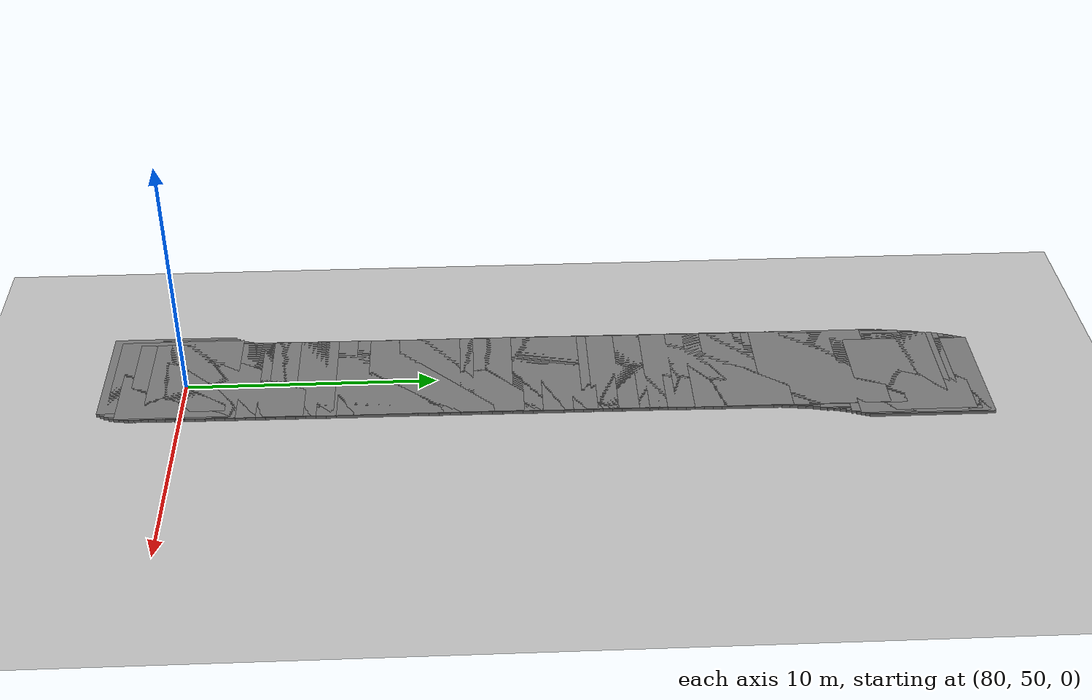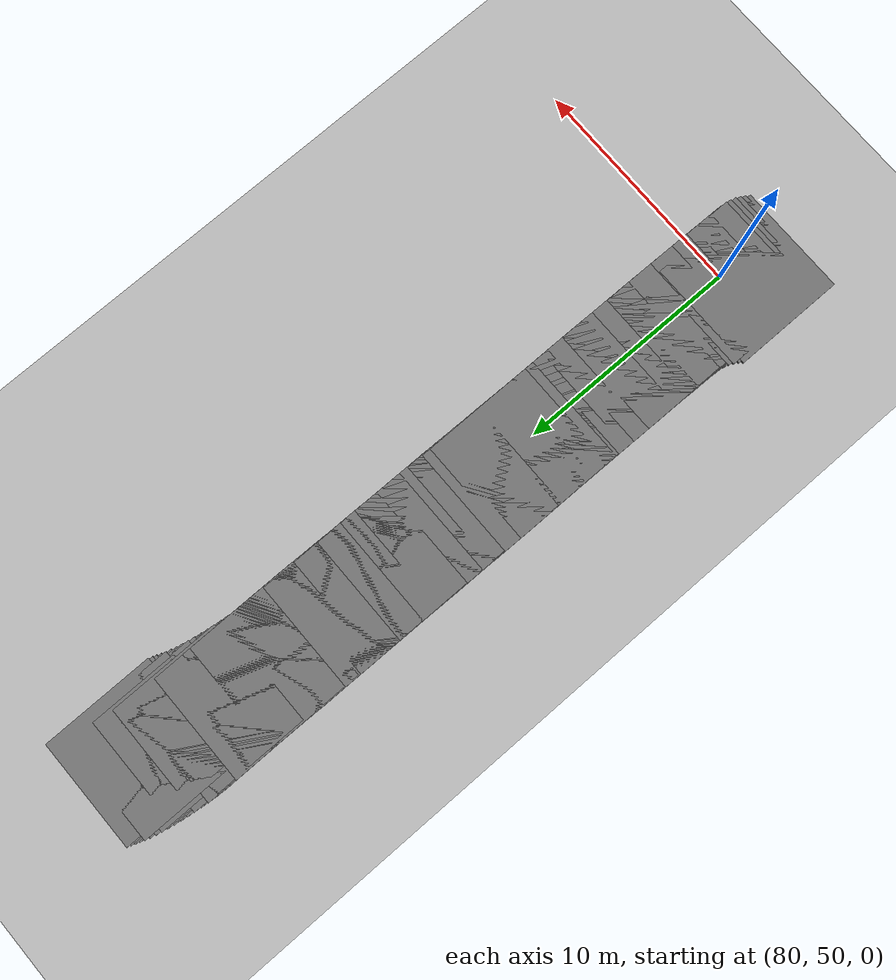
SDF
<sdf version="1.6">
 <world name="default">
  <include><uri>model://sun</uri></include>
  <include><uri>model://ground_plane</uri></include>
  <model name="road_segment_180">
   <static>true</static>
   <link name="link">
    <visual name="visual">
     <geometry><box><size>5.0 5.0 0.2</size></box></geometry>
     <material><ambient>0.5 0.5 0.5 1</ambient><diffuse>0.5 0.5 0.5 1</diffuse></material>
     <pose>80.60888745921979 79.49211408024895 0.0 0 0 0</pose>
    </visual>
    <collision name="collision">
     <geometry><box><size>5.0 5.0 0.2</size></box></geometry>
     <pose>80.60888745921979 79.49211408024895 0.0 0 0 0</pose>
    </collision>
   </link>
  </model>
  <model name="road_segment_181">
   <static>true</static>
   <link name="link">
    <visual name="visual">
     <geometry><box><size>5.0 5.0 0.2</size></box></geometry>
     <material><ambient>0.5 0.5 0.5 1</ambient><diffuse>0.5 0.5 0.5 1</diffuse></material>
     <pose>80.55144524606797 79.33194410394843 0.0 0 0 0</pose>
    </visual>
    <collision name="collision">
     <geometry><box><size>5.0 5.0 0.2</size></box></geometry>
     <pose>80.55144524606797 79.33194410394843 0.0 0 0 0</pose>
    </collision>
   </link>
  </model>
  <model name="road_segment_182">
   <static>true</static>
   <link name="link">
    <visual name="visual">
     <geometry><box><size>5.0 5.0 0.2</size></box></geometry>
     <material><ambient>0.5 0.5 0.5 1</ambient><diffuse>0.5 0.5 0.5 1</diffuse></material>
     <pose>80.49216488210705 79.1734085151585 0.0 0 0 0</pose>
    </visual>
    <collision name="collision">
     <geometry><box><size>5.0 5.0 0.2</size></box></geometry>
     <pose>80.49216488210705 79.1734085151585 0.0 0 0 0</pose>
    </collision>
   </link>
  </model>
  <model name="road_segment_183">
   <static>true</static>
   <link name="link">
    <visual name="visual">
     <geometry><box><size>5.0 5.0 0.2</size></box></geometry>
     <material><ambient>0.5 0.5 0.5 1</ambient><diffuse>0.5 0.5 0.5 1</diffuse></material>
     <pose>80.4285189099786 79.00588379504936 0.0 0 0 0</pose>
    </visual>
    <collision name="collision">
     <geometry><box><size>5.0 5.0 0.2</size></box></geometry>
     <pose>80.4285189099786 79.00588379504936 0.0 0 0 0</pose>
    </collision>
   </link>
  </model>
  <model name="road_segment_184">
   <static>true</static>
   <link name="link">
    <visual name="visual">
     <geometry><box><size>5.0 5.0 0.2</size></box></geometry>
     <material><ambient>0.5 0.5 0.5 1</ambient><diffuse>0.5 0.5 0.5 1</diffuse></material>
     <pose>80.36487293781751 78.82242379668098 0.0 0 0 0</pose>
    </visual>
    <collision name="collision">
     <geometry><box><size>5.0 5.0 0.2</size></box></geometry>
     <pose>80.36487293781751 78.82242379668098 0.0 0 0 0</pose>
    </collision>
   </link>
  </model>
  <model name="road_segment_185">
   <static>true</static>
   <link name="link">
    <visual name="visual">
     <geometry><box><size>5.0 5.0 0.2</size></box></geometry>
     <material><ambient>0.5 0.5 0.5 1</ambient><diffuse>0.5 0.5 0.5 1</diffuse></material>
     <pose>80.30076742794597 78.62016834191523 0.0 0 0 0</pose>
    </visual>
    <collision name="collision">
     <geometry><box><size>5.0 5.0 0.2</size></box></geometry>
     <pose>80.30076742794597 78.62016834191523 0.0 0 0 0</pose>
    </collision>
   </link>
  </model>
  <model name="road_segment_186">
   <static>true</static>
   <link name="link">
    <visual name="visual">
     <geometry><box><size>5.0 5.0 0.2</size></box></geometry>
     <material><ambient>0.5 0.5 0.5 1</ambient><diffuse>0.5 0.5 0.5 1</diffuse></material>
     <pose>80.23918937549817 78.39217128381212 0.0 0 0 0</pose>
    </visual>
    <collision name="collision">
     <geometry><box><size>5.0 5.0 0.2</size></box></geometry>
     <pose>80.23918937549817 78.39217128381212 0.0 0 0 0</pose>
    </collision>
   </link>
  </model>
  <model name="road_segment_187">
   <static>true</static>
   <link name="link">
    <visual name="visual">
     <geometry><box><size>5.0 5.0 0.2</size></box></geometry>
     <material><ambient>0.5 0.5 0.5 1</ambient><diffuse>0.5 0.5 0.5 1</diffuse></material>
     <pose>80.18611277054654 78.1506905287193 0.0 0 0 0</pose>
    </visual>
    <collision name="collision">
     <geometry><box><size>5.0 5.0 0.2</size></box></geometry>
     <pose>80.18611277054654 78.1506905287193 0.0 0 0 0</pose>
    </collision>
   </link>
  </model>
  <model name="road_segment_188">
   <static>true</static>
   <link name="link">
    <visual name="visual">
     <geometry><box><size>5.0 5.0 0.2</size></box></geometry>
     <material><ambient>0.5 0.5 0.5 1</ambient><diffuse>0.5 0.5 0.5 1</diffuse></material>
     <pose>80.13441477872625 77.89940344855557 0.0 0 0 0</pose>
    </visual>
    <collision name="collision">
     <geometry><box><size>5.0 5.0 0.2</size></box></geometry>
     <pose>80.13441477872625 77.89940344855557 0.0 0 0 0</pose>
    </collision>
   </link>
  </model>
  <model name="road_segment_189">
   <static>true</static>
   <link name="link">
    <visual name="visual">
     <geometry><box><size>5.0 5.0 0.2</size></box></geometry>
     <material><ambient>0.5 0.5 0.5 1</ambient><diffuse>0.5 0.5 0.5 1</diffuse></material>
     <pose>80.08202748035662 77.63095529949786 0.0 0 0 0</pose>
    </visual>
    <collision name="collision">
     <geometry><box><size>5.0 5.0 0.2</size></box></geometry>
     <pose>80.08202748035662 77.63095529949786 0.0 0 0 0</pose>
    </collision>
   </link>
  </model>
  <model name="road_segment_190">
   <static>true</static>
   <link name="link">
    <visual name="visual">
     <geometry><box><size>5.0 5.0 0.2</size></box></geometry>
     <material><ambient>0.5 0.5 0.5 1</ambient><diffuse>0.5 0.5 0.5 1</diffuse></material>
     <pose>80.03193787050652 77.35474380975569 0.0 0 0 0</pose>
    </visual>
    <collision name="collision">
     <geometry><box><size>5.0 5.0 0.2</size></box></geometry>
     <pose>80.03193787050652 77.35474380975569 0.0 0 0 0</pose>
    </collision>
   </link>
  </model>
  <model name="road_segment_191">
   <static>true</static>
   <link name="link">
    <visual name="visual">
     <geometry><box><size>5.0 5.0 0.2</size></box></geometry>
     <material><ambient>0.5 0.5 0.5 1</ambient><diffuse>0.5 0.5 0.5 1</diffuse></material>
     <pose>79.99011993934639 77.06750020429335 0.0 0 0 0</pose>
    </visual>
    <collision name="collision">
     <geometry><box><size>5.0 5.0 0.2</size></box></geometry>
     <pose>79.99011993934639 77.06750020429335 0.0 0 0 0</pose>
    </collision>
   </link>
  </model>
  <model name="road_segment_192">
   <static>true</static>
   <link name="link">
    <visual name="visual">
     <geometry><box><size>5.0 5.0 0.2</size></box></geometry>
     <material><ambient>0.5 0.5 0.5 1</ambient><diffuse>0.5 0.5 0.5 1</diffuse></material>
     <pose>79.95335692293575 76.76636430497274 0.0 0 0 0</pose>
    </visual>
    <collision name="collision">
     <geometry><box><size>5.0 5.0 0.2</size></box></geometry>
     <pose>79.95335692293575 76.76636430497274 0.0 0 0 0</pose>
    </collision>
   </link>
  </model>
  <model name="road_segment_193">
   <static>true</static>
   <link name="link">
    <visual name="visual">
     <geometry><box><size>5.0 5.0 0.2</size></box></geometry>
     <material><ambient>0.5 0.5 0.5 1</ambient><diffuse>0.5 0.5 0.5 1</diffuse></material>
     <pose>79.91544506226535 76.45664787120874 0.0 0 0 0</pose>
    </visual>
    <collision name="collision">
     <geometry><box><size>5.0 5.0 0.2</size></box></geometry>
     <pose>79.91544506226535 76.45664787120874 0.0 0 0 0</pose>
    </collision>
   </link>
  </model>
  <model name="road_segment_194">
   <static>true</static>
   <link name="link">
    <visual name="visual">
     <geometry><box><size>5.0 5.0 0.2</size></box></geometry>
     <material><ambient>0.5 0.5 0.5 1</ambient><diffuse>0.5 0.5 0.5 1</diffuse></material>
     <pose>79.87937135240406 76.14284546865736 0.0 0 0 0</pose>
    </visual>
    <collision name="collision">
     <geometry><box><size>5.0 5.0 0.2</size></box></geometry>
     <pose>79.87937135240406 76.14284546865736 0.0 0 0 0</pose>
    </collision>
   </link>
  </model>
  <model name="road_segment_195">
   <static>true</static>
   <link name="link">
    <visual name="visual">
     <geometry><box><size>5.0 5.0 0.2</size></box></geometry>
     <material><ambient>0.5 0.5 0.5 1</ambient><diffuse>0.5 0.5 0.5 1</diffuse></material>
     <pose>79.8538670097849 75.82332270981522 0.0 0 0 0</pose>
    </visual>
    <collision name="collision">
     <geometry><box><size>5.0 5.0 0.2</size></box></geometry>
     <pose>79.8538670097849 75.82332270981522 0.0 0 0 0</pose>
    </collision>
   </link>
  </model>
  <model name="road_segment_196">
   <static>true</static>
   <link name="link">
    <visual name="visual">
     <geometry><box><size>5.0 5.0 0.2</size></box></geometry>
     <material><ambient>0.5 0.5 0.5 1</ambient><diffuse>0.5 0.5 0.5 1</diffuse></material>
     <pose>79.84054041634543 75.49562801339829 0.0 0 0 0</pose>
    </visual>
    <collision name="collision">
     <geometry><box><size>5.0 5.0 0.2</size></box></geometry>
     <pose>79.84054041634543 75.49562801339829 0.0 0 0 0</pose>
    </collision>
   </link>
  </model>
  <model name="road_segment_197">
   <static>true</static>
   <link name="link">
    <visual name="visual">
     <geometry><box><size>5.0 5.0 0.2</size></box></geometry>
     <material><ambient>0.5 0.5 0.5 1</ambient><diffuse>0.5 0.5 0.5 1</diffuse></material>
     <pose>79.83801295895435 75.16180436381477 0.0 0 0 0</pose>
    </visual>
    <collision name="collision">
     <geometry><box><size>5.0 5.0 0.2</size></box></geometry>
     <pose>79.83801295895435 75.16180436381477 0.0 0 0 0</pose>
    </collision>
   </link>
  </model>
  <model name="road_segment_198">
   <static>true</static>
   <link name="link">
    <visual name="visual">
     <geometry><box><size>5.0 5.0 0.2</size></box></geometry>
     <material><ambient>0.5 0.5 0.5 1</ambient><diffuse>0.5 0.5 0.5 1</diffuse></material>
     <pose>79.84054041634543 74.82103456729122 0.0 0 0 0</pose>
    </visual>
    <collision name="collision">
     <geometry><box><size>5.0 5.0 0.2</size></box></geometry>
     <pose>79.84054041634543 74.82103456729122 0.0 0 0 0</pose>
    </collision>
   </link>
  </model>
  <model name="road_segment_199">
   <static>true</static>
   <link name="link">
    <visual name="visual">
     <geometry><box><size>5.0 5.0 0.2</size></box></geometry>
     <material><ambient>0.5 0.5 0.5 1</ambient><diffuse>0.5 0.5 0.5 1</diffuse></material>
     <pose>79.84031064747388 74.4741358176011 0.0 0 0 0</pose>
    </visual>
    <collision name="collision">
     <geometry><box><size>5.0 5.0 0.2</size></box></geometry>
     <pose>79.84031064747388 74.4741358176011 0.0 0 0 0</pose>
    </collision>
   </link>
  </model>
  <model name="road_segment_200">
   <static>true</static>
   <link name="link">
    <visual name="visual">
     <geometry><box><size>5.0 5.0 0.2</size></box></geometry>
     <material><ambient>0.5 0.5 0.5 1</ambient><diffuse>0.5 0.5 0.5 1</diffuse></material>
     <pose>79.84559533109497 74.12478548663418 0.0 0 0 0</pose>
    </visual>
    <collision name="collision">
     <geometry><box><size>5.0 5.0 0.2</size></box></geometry>
     <pose>79.84559533109497 74.12478548663418 0.0 0 0 0</pose>
    </collision>
   </link>
  </model>
  <model name="road_segment_201">
   <static>true</static>
   <link name="link">
    <visual name="visual">
     <geometry><box><size>5.0 5.0 0.2</size></box></geometry>
     <material><ambient>0.5 0.5 0.5 1</ambient><diffuse>0.5 0.5 0.5 1</diffuse></material>
     <pose>79.85179909010427 73.77094059001128 0.0 0 0 0</pose>
    </visual>
    <collision name="collision">
     <geometry><box><size>5.0 5.0 0.2</size></box></geometry>
     <pose>79.85179909010427 73.77094059001128 0.0 0 0 0</pose>
    </collision>
   </link>
  </model>
  <model name="road_segment_202">
   <static>true</static>
   <link name="link">
    <visual name="visual">
     <geometry><box><size>5.0 5.0 0.2</size></box></geometry>
     <material><ambient>0.5 0.5 0.5 1</ambient><diffuse>0.5 0.5 0.5 1</diffuse></material>
     <pose>79.85110978355492 73.41546130587778 0.0 0 0 0</pose>
    </visual>
    <collision name="collision">
     <geometry><box><size>5.0 5.0 0.2</size></box></geometry>
     <pose>79.85110978355492 73.41546130587778 0.0 0 0 0</pose>
    </collision>
   </link>
  </model>
  <model name="road_segment_203">
   <static>true</static>
   <link name="link">
    <visual name="visual">
     <geometry><box><size>5.0 5.0 0.2</size></box></geometry>
     <material><ambient>0.5 0.5 0.5 1</ambient><diffuse>0.5 0.5 0.5 1</diffuse></material>
     <pose>79.84720371306517 73.05834763421916 0.0 0 0 0</pose>
    </visual>
    <collision name="collision">
     <geometry><box><size>5.0 5.0 0.2</size></box></geometry>
     <pose>79.84720371306517 73.05834763421916 0.0 0 0 0</pose>
    </collision>
   </link>
  </model>
  <model name="road_segment_204">
   <static>true</static>
   <link name="link">
    <visual name="visual">
     <geometry><box><size>5.0 5.0 0.2</size></box></geometry>
     <material><ambient>0.5 0.5 0.5 1</ambient><diffuse>0.5 0.5 0.5 1</diffuse></material>
     <pose>79.84168926060521 72.70409414072043 0.0 0 0 0</pose>
    </visual>
    <collision name="collision">
     <geometry><box><size>5.0 5.0 0.2</size></box></geometry>
     <pose>79.84168926060521 72.70409414072043 0.0 0 0 0</pose>
    </collision>
   </link>
  </model>
  <model name="road_segment_205">
   <static>true</static>
   <link name="link">
    <visual name="visual">
     <geometry><box><size>5.0 5.0 0.2</size></box></geometry>
     <material><ambient>0.5 0.5 0.5 1</ambient><diffuse>0.5 0.5 0.5 1</diffuse></material>
     <pose>79.83479619501394 72.34698046906907 0.0 0 0 0</pose>
    </visual>
    <collision name="collision">
     <geometry><box><size>5.0 5.0 0.2</size></box></geometry>
     <pose>79.83479619501394 72.34698046906907 0.0 0 0 0</pose>
    </collision>
   </link>
  </model>
  <model name="road_segment_206">
   <static>true</static>
   <link name="link">
    <visual name="visual">
     <geometry><box><size>5.0 5.0 0.2</size></box></geometry>
     <material><ambient>0.5 0.5 0.5 1</ambient><diffuse>0.5 0.5 0.5 1</diffuse></material>
     <pose>79.83157943107351 71.9841464411197 0.0 0 0 0</pose>
    </visual>
    <collision name="collision">
     <geometry><box><size>5.0 5.0 0.2</size></box></geometry>
     <pose>79.83157943107351 71.9841464411197 0.0 0 0 0</pose>
    </collision>
   </link>
  </model>
  <model name="road_segment_207">
   <static>true</static>
   <link name="link">
    <visual name="visual">
     <geometry><box><size>5.0 5.0 0.2</size></box></geometry>
     <material><ambient>0.5 0.5 0.5 1</ambient><diffuse>0.5 0.5 0.5 1</diffuse></material>
     <pose>79.8281328982942 71.62049521941866 0.0 0 0 0</pose>
    </visual>
    <collision name="collision">
     <geometry><box><size>5.0 5.0 0.2</size></box></geometry>
     <pose>79.8281328982942 71.62049521941866 0.0 0 0 0</pose>
    </collision>
   </link>
  </model>
  <model name="road_segment_208">
   <static>true</static>
   <link name="link">
    <visual name="visual">
     <geometry><box><size>5.0 5.0 0.2</size></box></geometry>
     <material><ambient>0.5 0.5 0.5 1</ambient><diffuse>0.5 0.5 0.5 1</diffuse></material>
     <pose>79.8203207573147 71.26052136961466 0.0 0 0 0</pose>
    </visual>
    <collision name="collision">
     <geometry><box><size>5.0 5.0 0.2</size></box></geometry>
     <pose>79.8203207573147 71.26052136961466 0.0 0 0 0</pose>
    </collision>
   </link>
  </model>
  <model name="road_segment_209">
   <static>true</static>
   <link name="link">
    <visual name="visual">
     <geometry><box><size>5.0 5.0 0.2</size></box></geometry>
     <material><ambient>0.5 0.5 0.5 1</ambient><diffuse>0.5 0.5 0.5 1</diffuse></material>
     <pose>79.81319792288453 70.90626787610867 0.0 0 0 0</pose>
    </visual>
    <collision name="collision">
     <geometry><box><size>5.0 5.0 0.2</size></box></geometry>
     <pose>79.81319792288453 70.90626787610867 0.0 0 0 0</pose>
    </collision>
   </link>
  </model>
  <model name="road_segment_210">
   <static>true</static>
   <link name="link">
    <visual name="visual">
     <geometry><box><size>5.0 5.0 0.2</size></box></geometry>
     <material><ambient>0.5 0.5 0.5 1</ambient><diffuse>0.5 0.5 0.5 1</diffuse></material>
     <pose>79.80630485729324 70.54833701070564 0.0 0 0 0</pose>
    </visual>
    <collision name="collision">
     <geometry><box><size>5.0 5.0 0.2</size></box></geometry>
     <pose>79.80630485729324 70.54833701070564 0.0 0 0 0</pose>
    </collision>
   </link>
  </model>
  <model name="road_segment_211">
   <static>true</static>
   <link name="link">
    <visual name="visual">
     <geometry><box><size>5.0 5.0 0.2</size></box></geometry>
     <material><ambient>0.5 0.5 0.5 1</ambient><diffuse>0.5 0.5 0.5 1</diffuse></material>
     <pose>79.80607508845435 70.1842771921215 0.0 0 0 0</pose>
    </visual>
    <collision name="collision">
     <geometry><box><size>5.0 5.0 0.2</size></box></geometry>
     <pose>79.80607508845435 70.1842771921215 0.0 0 0 0</pose>
    </collision>
   </link>
  </model>
  <model name="road_segment_212">
   <static>true</static>
   <link name="link">
    <visual name="visual">
     <geometry><box><size>5.0 5.0 0.2</size></box></geometry>
     <material><ambient>0.5 0.5 0.5 1</ambient><diffuse>0.5 0.5 0.5 1</diffuse></material>
     <pose>79.81044069665455 69.81449701723938 0.0 0 0 0</pose>
    </visual>
    <collision name="collision">
     <geometry><box><size>5.0 5.0 0.2</size></box></geometry>
     <pose>79.81044069665455 69.81449701723938 0.0 0 0 0</pose>
    </collision>
   </link>
  </model>
  <model name="road_segment_213">
   <static>true</static>
   <link name="link">
    <visual name="visual">
     <geometry><box><size>5.0 5.0 0.2</size></box></geometry>
     <material><ambient>0.5 0.5 0.5 1</ambient><diffuse>0.5 0.5 0.5 1</diffuse></material>
     <pose>79.80607508845435 69.44185666421187 0.0 0 0 0</pose>
    </visual>
    <collision name="collision">
     <geometry><box><size>5.0 5.0 0.2</size></box></geometry>
     <pose>79.80607508845435 69.44185666421187 0.0 0 0 0</pose>
    </collision>
   </link>
  </model>
  <model name="road_segment_214">
   <static>true</static>
   <link name="link">
    <visual name="visual">
     <geometry><box><size>5.0 5.0 0.2</size></box></geometry>
     <material><ambient>0.5 0.5 0.5 1</ambient><diffuse>0.5 0.5 0.5 1</diffuse></material>
     <pose>79.8007904048333 69.06758192367374 0.0 0 0 0</pose>
    </visual>
    <collision name="collision">
     <geometry><box><size>5.0 5.0 0.2</size></box></geometry>
     <pose>79.8007904048333 69.06758192367374 0.0 0 0 0</pose>
    </collision>
   </link>
  </model>
  <model name="road_segment_215">
   <static>true</static>
   <link name="link">
    <visual name="visual">
     <geometry><box><size>5.0 5.0 0.2</size></box></geometry>
     <material><ambient>0.5 0.5 0.5 1</ambient><diffuse>0.5 0.5 0.5 1</diffuse></material>
     <pose>79.79918202286308 68.68758682683763 0.0 0 0 0</pose>
    </visual>
    <collision name="collision">
     <geometry><box><size>5.0 5.0 0.2</size></box></geometry>
     <pose>79.79918202286308 68.68758682683763 0.0 0 0 0</pose>
    </collision>
   </link>
  </model>
  <model name="road_segment_216">
   <static>true</static>
   <link name="link">
    <visual name="visual">
     <geometry><box><size>5.0 5.0 0.2</size></box></geometry>
     <material><ambient>0.5 0.5 0.5 1</ambient><diffuse>0.5 0.5 0.5 1</diffuse></material>
     <pose>79.7959652589553 68.30105417994457 0.0 0 0 0</pose>
    </visual>
    <collision name="collision">
     <geometry><box><size>5.0 5.0 0.2</size></box></geometry>
     <pose>79.7959652589553 68.30105417994457 0.0 0 0 0</pose>
    </collision>
   </link>
  </model>
  <model name="road_segment_217">
   <static>true</static>
   <link name="link">
    <visual name="visual">
     <geometry><box><size>5.0 5.0 0.2</size></box></geometry>
     <material><ambient>0.5 0.5 0.5 1</ambient><diffuse>0.5 0.5 0.5 1</diffuse></material>
     <pose>79.7959652589553 67.912069951782 0.0 0 0 0</pose>
    </visual>
    <collision name="collision">
     <geometry><box><size>5.0 5.0 0.2</size></box></geometry>
     <pose>79.7959652589553 67.912069951782 0.0 0 0 0</pose>
    </collision>
   </link>
  </model>
  <model name="road_segment_218">
   <static>true</static>
   <link name="link">
    <visual name="visual">
     <geometry><box><size>5.0 5.0 0.2</size></box></geometry>
     <material><ambient>0.5 0.5 0.5 1</ambient><diffuse>0.5 0.5 0.5 1</diffuse></material>
     <pose>79.79435687698509 67.51940835172236 0.0 0 0 0</pose>
    </visual>
    <collision name="collision">
     <geometry><box><size>5.0 5.0 0.2</size></box></geometry>
     <pose>79.79435687698509 67.51940835172236 0.0 0 0 0</pose>
    </collision>
   </link>
  </model>
  <model name="road_segment_219">
   <static>true</static>
   <link name="link">
    <visual name="visual">
     <geometry><box><size>5.0 5.0 0.2</size></box></geometry>
     <material><ambient>0.5 0.5 0.5 1</ambient><diffuse>0.5 0.5 0.5 1</diffuse></material>
     <pose>79.7902210376238 67.12102639535746 0.0 0 0 0</pose>
    </visual>
    <collision name="collision">
     <geometry><box><size>5.0 5.0 0.2</size></box></geometry>
     <pose>79.7902210376238 67.12102639535746 0.0 0 0 0</pose>
    </collision>
   </link>
  </model>
  <model name="road_segment_220">
   <static>true</static>
   <link name="link">
    <visual name="visual">
     <geometry><box><size>5.0 5.0 0.2</size></box></geometry>
     <material><ambient>0.5 0.5 0.5 1</ambient><diffuse>0.5 0.5 0.5 1</diffuse></material>
     <pose>79.78953173107448 66.71937566397136 0.0 0 0 0</pose>
    </visual>
    <collision name="collision">
     <geometry><box><size>5.0 5.0 0.2</size></box></geometry>
     <pose>79.78953173107448 66.71937566397136 0.0 0 0 0</pose>
    </collision>
   </link>
  </model>
  <model name="road_segment_221">
   <static>true</static>
   <link name="link">
    <visual name="visual">
     <geometry><box><size>5.0 5.0 0.2</size></box></geometry>
     <material><ambient>0.5 0.5 0.5 1</ambient><diffuse>0.5 0.5 0.5 1</diffuse></material>
     <pose>79.79159965075512 66.31486475443263 0.0 0 0 0</pose>
    </visual>
    <collision name="collision">
     <geometry><box><size>5.0 5.0 0.2</size></box></geometry>
     <pose>79.79159965075512 66.31486475443263 0.0 0 0 0</pose>
    </collision>
   </link>
  </model>
  <model name="road_segment_222">
   <static>true</static>
   <link name="link">
    <visual name="visual">
     <geometry><box><size>5.0 5.0 0.2</size></box></geometry>
     <material><ambient>0.5 0.5 0.5 1</ambient><diffuse>0.5 0.5 0.5 1</diffuse></material>
     <pose>79.78746381139382 65.9160742011919 0.0 0 0 0</pose>
    </visual>
    <collision name="collision">
     <geometry><box><size>5.0 5.0 0.2</size></box></geometry>
     <pose>79.78746381139382 65.9160742011919 0.0 0 0 0</pose>
    </collision>
   </link>
  </model>
  <model name="road_segment_223">
   <static>true</static>
   <link name="link">
    <visual name="visual">
     <geometry><box><size>5.0 5.0 0.2</size></box></geometry>
     <material><ambient>0.5 0.5 0.5 1</ambient><diffuse>0.5 0.5 0.5 1</diffuse></material>
     <pose>79.78309820319363 65.5160578573164 0.0 0 0 0</pose>
    </visual>
    <collision name="collision">
     <geometry><box><size>5.0 5.0 0.2</size></box></geometry>
     <pose>79.78309820319363 65.5160578573164 0.0 0 0 0</pose>
    </collision>
   </link>
  </model>
  <model name="road_segment_224">
   <static>true</static>
   <link name="link">
    <visual name="visual">
     <geometry><box><size>5.0 5.0 0.2</size></box></geometry>
     <material><ambient>0.5 0.5 0.5 1</ambient><diffuse>0.5 0.5 0.5 1</diffuse></material>
     <pose>79.77758375073367 65.11318133529554 0.0 0 0 0</pose>
    </visual>
    <collision name="collision">
     <geometry><box><size>5.0 5.0 0.2</size></box></geometry>
     <pose>79.77758375073367 65.11318133529554 0.0 0 0 0</pose>
    </collision>
   </link>
  </model>
  <model name="road_segment_225">
   <static>true</static>
   <link name="link">
    <visual name="visual">
     <geometry><box><size>5.0 5.0 0.2</size></box></geometry>
     <material><ambient>0.5 0.5 0.5 1</ambient><diffuse>0.5 0.5 0.5 1</diffuse></material>
     <pose>79.77344791140503 64.7033586663419 0.0 0 0 0</pose>
    </visual>
    <collision name="collision">
     <geometry><box><size>5.0 5.0 0.2</size></box></geometry>
     <pose>79.77344791140503 64.7033586663419 0.0 0 0 0</pose>
    </collision>
   </link>
  </model>
  <model name="road_segment_226">
   <static>true</static>
   <link name="link">
    <visual name="visual">
     <geometry><box><size>5.0 5.0 0.2</size></box></geometry>
     <material><ambient>0.5 0.5 0.5 1</ambient><diffuse>0.5 0.5 0.5 1</diffuse></material>
     <pose>79.7683929966555 64.29190160987038 0.0 0 0 0</pose>
    </visual>
    <collision name="collision">
     <geometry><box><size>5.0 5.0 0.2</size></box></geometry>
     <pose>79.7683929966555 64.29190160987038 0.0 0 0 0</pose>
    </collision>
   </link>
  </model>
  <model name="road_segment_227">
   <static>true</static>
   <link name="link">
    <visual name="visual">
     <geometry><box><size>5.0 5.0 0.2</size></box></geometry>
     <material><ambient>0.5 0.5 0.5 1</ambient><diffuse>0.5 0.5 0.5 1</diffuse></material>
     <pose>79.76448692613309 63.882487537792585 0.0 0 0 0</pose>
    </visual>
    <collision name="collision">
     <geometry><box><size>5.0 5.0 0.2</size></box></geometry>
     <pose>79.76448692613309 63.882487537792585 0.0 0 0 0</pose>
    </collision>
   </link>
  </model>
  <model name="road_segment_228">
   <static>true</static>
   <link name="link">
    <visual name="visual">
     <geometry><box><size>5.0 5.0 0.2</size></box></geometry>
     <material><ambient>0.5 0.5 0.5 1</ambient><diffuse>0.5 0.5 0.5 1</diffuse></material>
     <pose>79.76517623271508 63.467761706299875 0.0 0 0 0</pose>
    </visual>
    <collision name="collision">
     <geometry><box><size>5.0 5.0 0.2</size></box></geometry>
     <pose>79.76517623271508 63.467761706299875 0.0 0 0 0</pose>
    </collision>
   </link>
  </model>
  <model name="road_segment_229">
   <static>true</static>
   <link name="link">
    <visual name="visual">
     <geometry><box><size>5.0 5.0 0.2</size></box></geometry>
     <material><ambient>0.5 0.5 0.5 1</ambient><diffuse>0.5 0.5 0.5 1</diffuse></material>
     <pose>79.7624190064851 63.049767099778684 0.0 0 0 0</pose>
    </visual>
    <collision name="collision">
     <geometry><box><size>5.0 5.0 0.2</size></box></geometry>
     <pose>79.7624190064851 63.049767099778684 0.0 0 0 0</pose>
    </collision>
   </link>
  </model>
  <model name="road_segment_230">
   <static>true</static>
   <link name="link">
    <visual name="visual">
     <geometry><box><size>5.0 5.0 0.2</size></box></geometry>
     <material><ambient>0.5 0.5 0.5 1</ambient><diffuse>0.5 0.5 0.5 1</diffuse></material>
     <pose>79.75897247367314 62.63422407452705 0.0 0 0 0</pose>
    </visual>
    <collision name="collision">
     <geometry><box><size>5.0 5.0 0.2</size></box></geometry>
     <pose>79.75897247367314 62.63422407452705 0.0 0 0 0</pose>
    </collision>
   </link>
  </model>
  <model name="road_segment_231">
   <static>true</static>
   <link name="link">
    <visual name="visual">
     <geometry><box><size>5.0 5.0 0.2</size></box></geometry>
     <material><ambient>0.5 0.5 0.5 1</ambient><diffuse>0.5 0.5 0.5 1</diffuse></material>
     <pose>79.75391755892362 62.21255209610156 0.0 0 0 0</pose>
    </visual>
    <collision name="collision">
     <geometry><box><size>5.0 5.0 0.2</size></box></geometry>
     <pose>79.75391755892362 62.21255209610156 0.0 0 0 0</pose>
    </collision>
   </link>
  </model>
  <model name="road_segment_232">
   <static>true</static>
   <link name="link">
    <visual name="visual">
     <geometry><box><size>5.0 5.0 0.2</size></box></geometry>
     <material><ambient>0.5 0.5 0.5 1</ambient><diffuse>0.5 0.5 0.5 1</diffuse></material>
     <pose>79.74702449336499 61.797826264608844 0.0 0 0 0</pose>
    </visual>
    <collision name="collision">
     <geometry><box><size>5.0 5.0 0.2</size></box></geometry>
     <pose>79.74702449336499 61.797826264608844 0.0 0 0 0</pose>
    </collision>
   </link>
  </model>
  <model name="road_segment_233">
   <static>true</static>
   <link name="link">
    <visual name="visual">
     <geometry><box><size>5.0 5.0 0.2</size></box></geometry>
     <material><ambient>0.5 0.5 0.5 1</ambient><diffuse>0.5 0.5 0.5 1</diffuse></material>
     <pose>79.74242911629325 61.38555201437842 0.0 0 0 0</pose>
    </visual>
    <collision name="collision">
     <geometry><box><size>5.0 5.0 0.2</size></box></geometry>
     <pose>79.74242911629325 61.38555201437842 0.0 0 0 0</pose>
    </collision>
   </link>
  </model>
  <model name="road_segment_234">
   <static>true</static>
   <link name="link">
    <visual name="visual">
     <geometry><box><size>5.0 5.0 0.2</size></box></geometry>
     <material><ambient>0.5 0.5 0.5 1</ambient><diffuse>0.5 0.5 0.5 1</diffuse></material>
     <pose>79.73967189006326 60.97940671732908 0.0 0 0 0</pose>
    </visual>
    <collision name="collision">
     <geometry><box><size>5.0 5.0 0.2</size></box></geometry>
     <pose>79.73967189006326 60.97940671732908 0.0 0 0 0</pose>
    </collision>
   </link>
  </model>
  <model name="road_segment_235">
   <static>true</static>
   <link name="link">
    <visual name="visual">
     <geometry><box><size>5.0 5.0 0.2</size></box></geometry>
     <material><ambient>0.5 0.5 0.5 1</ambient><diffuse>0.5 0.5 0.5 1</diffuse></material>
     <pose>79.73760397041528 60.577347389067135 0.0 0 0 0</pose>
    </visual>
    <collision name="collision">
     <geometry><box><size>5.0 5.0 0.2</size></box></geometry>
     <pose>79.73760397041528 60.577347389067135 0.0 0 0 0</pose>
    </collision>
   </link>
  </model>
  <model name="road_segment_236">
   <static>true</static>
   <link name="link">
    <visual name="visual">
     <geometry><box><size>5.0 5.0 0.2</size></box></geometry>
     <material><ambient>0.5 0.5 0.5 1</ambient><diffuse>0.5 0.5 0.5 1</diffuse></material>
     <pose>79.73576581957353 60.18345999836547 0.0 0 0 0</pose>
    </visual>
    <collision name="collision">
     <geometry><box><size>5.0 5.0 0.2</size></box></geometry>
     <pose>79.73576581957353 60.18345999836547 0.0 0 0 0</pose>
    </collision>
   </link>
  </model>
  <model name="road_segment_237">
   <static>true</static>
   <link name="link">
    <visual name="visual">
     <geometry><box><size>5.0 5.0 0.2</size></box></geometry>
     <material><ambient>0.5 0.5 0.5 1</ambient><diffuse>0.5 0.5 0.5 1</diffuse></material>
     <pose>79.73737420154373 59.788755413904894 0.0 0 0 0</pose>
    </visual>
    <collision name="collision">
     <geometry><box><size>5.0 5.0 0.2</size></box></geometry>
     <pose>79.73737420154373 59.788755413904894 0.0 0 0 0</pose>
    </collision>
   </link>
  </model>
  <model name="road_segment_238">
   <static>true</static>
   <link name="link">
    <visual name="visual">
     <geometry><box><size>5.0 5.0 0.2</size></box></geometry>
     <material><ambient>0.5 0.5 0.5 1</ambient><diffuse>0.5 0.5 0.5 1</diffuse></material>
     <pose>79.74128027203349 59.39895399199063 0.0 0 0 0</pose>
    </visual>
    <collision name="collision">
     <geometry><box><size>5.0 5.0 0.2</size></box></geometry>
     <pose>79.74128027203349 59.39895399199063 0.0 0 0 0</pose>
    </collision>
   </link>
  </model>
  <model name="road_segment_239">
   <static>true</static>
   <link name="link">
    <visual name="visual">
     <geometry><box><size>5.0 5.0 0.2</size></box></geometry>
     <material><ambient>0.5 0.5 0.5 1</ambient><diffuse>0.5 0.5 0.5 1</diffuse></material>
     <pose>79.74242911629325 59.005066601288966 0.0 0 0 0</pose>
    </visual>
    <collision name="collision">
     <geometry><box><size>5.0 5.0 0.2</size></box></geometry>
     <pose>79.74242911629325 59.005066601288966 0.0 0 0 0</pose>
    </collision>
   </link>
  </model>
  <model name="road_segment_240">
   <static>true</static>
   <link name="link">
    <visual name="visual">
     <geometry><box><size>5.0 5.0 0.2</size></box></geometry>
     <material><ambient>0.5 0.5 0.5 1</ambient><diffuse>0.5 0.5 0.5 1</diffuse></material>
     <pose>79.7447268048128 58.60831903244193 0.0 0 0 0</pose>
    </visual>
    <collision name="collision">
     <geometry><box><size>5.0 5.0 0.2</size></box></geometry>
     <pose>79.7447268048128 58.60831903244193 0.0 0 0 0</pose>
    </collision>
   </link>
  </model>
  <model name="road_segment_241">
   <static>true</static>
   <link name="link">
    <visual name="visual">
     <geometry><box><size>5.0 5.0 0.2</size></box></geometry>
     <material><ambient>0.5 0.5 0.5 1</ambient><diffuse>0.5 0.5 0.5 1</diffuse></material>
     <pose>79.74334819171413 58.20748549480751 0.0 0 0 0</pose>
    </visual>
    <collision name="collision">
     <geometry><box><size>5.0 5.0 0.2</size></box></geometry>
     <pose>79.74334819171413 58.20748549480751 0.0 0 0 0</pose>
    </collision>
   </link>
  </model>
  <model name="road_segment_242">
   <static>true</static>
   <link name="link">
    <visual name="visual">
     <geometry><box><size>5.0 5.0 0.2</size></box></geometry>
     <material><ambient>0.5 0.5 0.5 1</ambient><diffuse>0.5 0.5 0.5 1</diffuse></material>
     <pose>79.7385230458035 57.80951213532571 0.0 0 0 0</pose>
    </visual>
    <collision name="collision">
     <geometry><box><size>5.0 5.0 0.2</size></box></geometry>
     <pose>79.7385230458035 57.80951213532571 0.0 0 0 0</pose>
    </collision>
   </link>
  </model>
  <model name="road_segment_243">
   <static>true</static>
   <link name="link">
    <visual name="visual">
     <geometry><box><size>5.0 5.0 0.2</size></box></geometry>
     <material><ambient>0.5 0.5 0.5 1</ambient><diffuse>0.5 0.5 0.5 1</diffuse></material>
     <pose>79.73323836221509 57.41113017896807 0.0 0 0 0</pose>
    </visual>
    <collision name="collision">
     <geometry><box><size>5.0 5.0 0.2</size></box></geometry>
     <pose>79.73323836221509 57.41113017896807 0.0 0 0 0</pose>
    </collision>
   </link>
  </model>
  <model name="road_segment_244">
   <static>true</static>
   <link name="link">
    <visual name="visual">
     <geometry><box><size>5.0 5.0 0.2</size></box></geometry>
     <material><ambient>0.5 0.5 0.5 1</ambient><diffuse>0.5 0.5 0.5 1</diffuse></material>
     <pose>79.73140021137333 57.016834191383325 0.0 0 0 0</pose>
    </visual>
    <collision name="collision">
     <geometry><box><size>5.0 5.0 0.2</size></box></geometry>
     <pose>79.73140021137333 57.016834191383325 0.0 0 0 0</pose>
    </collision>
   </link>
  </model>
  <model name="road_segment_245">
   <static>true</static>
   <link name="link">
    <visual name="visual">
     <geometry><box><size>5.0 5.0 0.2</size></box></geometry>
     <material><ambient>0.5 0.5 0.5 1</ambient><diffuse>0.5 0.5 0.5 1</diffuse></material>
     <pose>79.72956206056423 56.62253820380583 0.0 0 0 0</pose>
    </visual>
    <collision name="collision">
     <geometry><box><size>5.0 5.0 0.2</size></box></geometry>
     <pose>79.72956206056423 56.62253820380583 0.0 0 0 0</pose>
    </collision>
   </link>
  </model>
  <model name="road_segment_246">
   <static>true</static>
   <link name="link">
    <visual name="visual">
     <geometry><box><size>5.0 5.0 0.2</size></box></geometry>
     <material><ambient>0.5 0.5 0.5 1</ambient><diffuse>0.5 0.5 0.5 1</diffuse></material>
     <pose>79.72703460317314 56.22987660373894 0.0 0 0 0</pose>
    </visual>
    <collision name="collision">
     <geometry><box><size>5.0 5.0 0.2</size></box></geometry>
     <pose>79.72703460317314 56.22987660373894 0.0 0 0 0</pose>
    </collision>
   </link>
  </model>
  <model name="road_segment_247">
   <static>true</static>
   <link name="link">
    <visual name="visual">
     <geometry><box><size>5.0 5.0 0.2</size></box></geometry>
     <material><ambient>0.5 0.5 0.5 1</ambient><diffuse>0.5 0.5 0.5 1</diffuse></material>
     <pose>79.72519645236403 55.836806406796214 0.0 0 0 0</pose>
    </visual>
    <collision name="collision">
     <geometry><box><size>5.0 5.0 0.2</size></box></geometry>
     <pose>79.72519645236403 55.836806406796214 0.0 0 0 0</pose>
    </collision>
   </link>
  </model>
  <model name="road_segment_248">
   <static>true</static>
   <link name="link">
    <visual name="visual">
     <geometry><box><size>5.0 5.0 0.2</size></box></geometry>
     <material><ambient>0.5 0.5 0.5 1</ambient><diffuse>0.5 0.5 0.5 1</diffuse></material>
     <pose>79.72381783923272 55.44496200048825 0.0 0 0 0</pose>
    </visual>
    <collision name="collision">
     <geometry><box><size>5.0 5.0 0.2</size></box></geometry>
     <pose>79.72381783923272 55.44496200048825 0.0 0 0 0</pose>
    </collision>
   </link>
  </model>
  <model name="road_segment_249">
   <static>true</static>
   <link name="link">
    <visual name="visual">
     <geometry><box><size>5.0 5.0 0.2</size></box></geometry>
     <material><ambient>0.5 0.5 0.5 1</ambient><diffuse>0.5 0.5 0.5 1</diffuse></material>
     <pose>79.7203713064534 55.05107460978659 0.0 0 0 0</pose>
    </visual>
    <collision name="collision">
     <geometry><box><size>5.0 5.0 0.2</size></box></geometry>
     <pose>79.7203713064534 55.05107460978659 0.0 0 0 0</pose>
    </collision>
   </link>
  </model>
  <model name="road_segment_250">
   <static>true</static>
   <link name="link">
    <visual name="visual">
     <geometry><box><size>5.0 5.0 0.2</size></box></geometry>
     <material><ambient>0.5 0.5 0.5 1</ambient><diffuse>0.5 0.5 0.5 1</diffuse></material>
     <pose>79.71485685399344 54.65963880036173 0.0 0 0 0</pose>
    </visual>
    <collision name="collision">
     <geometry><box><size>5.0 5.0 0.2</size></box></geometry>
     <pose>79.71485685399344 54.65963880036173 0.0 0 0 0</pose>
    </collision>
   </link>
  </model>
  <model name="road_segment_251">
   <static>true</static>
   <link name="link">
    <visual name="visual">
     <geometry><box><size>5.0 5.0 0.2</size></box></geometry>
     <material><ambient>0.5 0.5 0.5 1</ambient><diffuse>0.5 0.5 0.5 1</diffuse></material>
     <pose>79.71164009005302 54.26289123150744 0.0 0 0 0</pose>
    </visual>
    <collision name="collision">
     <geometry><box><size>5.0 5.0 0.2</size></box></geometry>
     <pose>79.71164009005302 54.26289123150744 0.0 0 0 0</pose>
    </collision>
   </link>
  </model>
  <model name="road_segment_252">
   <static>true</static>
   <link name="link">
    <visual name="visual">
     <geometry><box><size>5.0 5.0 0.2</size></box></geometry>
     <material><ambient>0.5 0.5 0.5 1</ambient><diffuse>0.5 0.5 0.5 1</diffuse></material>
     <pose>79.70865309498414 53.87431560022795 0.0 0 0 0</pose>
    </visual>
    <collision name="collision">
     <geometry><box><size>5.0 5.0 0.2</size></box></geometry>
     <pose>79.70865309498414 53.87431560022795 0.0 0 0 0</pose>
    </collision>
   </link>
  </model>
  <model name="road_segment_253">
   <static>true</static>
   <link name="link">
    <visual name="visual">
     <geometry><box><size>5.0 5.0 0.2</size></box></geometry>
     <material><ambient>0.5 0.5 0.5 1</ambient><diffuse>0.5 0.5 0.5 1</diffuse></material>
     <pose>79.70428748678397 53.48614856582429 0.0 0 0 0</pose>
    </visual>
    <collision name="collision">
     <geometry><box><size>5.0 5.0 0.2</size></box></geometry>
     <pose>79.70428748678397 53.48614856582429 0.0 0 0 0</pose>
    </collision>
   </link>
  </model>
  <model name="road_segment_254">
   <static>true</static>
   <link name="link">
    <visual name="visual">
     <geometry><box><size>5.0 5.0 0.2</size></box></geometry>
     <material><ambient>0.5 0.5 0.5 1</ambient><diffuse>0.5 0.5 0.5 1</diffuse></material>
     <pose>79.701530260554 53.09266977200573 0.0 0 0 0</pose>
    </visual>
    <collision name="collision">
     <geometry><box><size>5.0 5.0 0.2</size></box></geometry>
     <pose>79.701530260554 53.09266977200573 0.0 0 0 0</pose>
    </collision>
   </link>
  </model>
  <model name="road_segment_255">
   <static>true</static>
   <link name="link">
    <visual name="visual">
     <geometry><box><size>5.0 5.0 0.2</size></box></geometry>
     <material><ambient>0.5 0.5 0.5 1</ambient><diffuse>0.5 0.5 0.5 1</diffuse></material>
     <pose>79.69946234087332 52.6975565906693 0.0 0 0 0</pose>
    </visual>
    <collision name="collision">
     <geometry><box><size>5.0 5.0 0.2</size></box></geometry>
     <pose>79.69946234087332 52.6975565906693 0.0 0 0 0</pose>
    </collision>
   </link>
  </model>
  <model name="road_segment_256">
   <static>true</static>
   <link name="link">
    <visual name="visual">
     <geometry><box><size>5.0 5.0 0.2</size></box></geometry>
     <material><ambient>0.5 0.5 0.5 1</ambient><diffuse>0.5 0.5 0.5 1</diffuse></material>
     <pose>79.69532650154468 52.30816376563088 0.0 0 0 0</pose>
    </visual>
    <collision name="collision">
     <geometry><box><size>5.0 5.0 0.2</size></box></geometry>
     <pose>79.69532650154468 52.30816376563088 0.0 0 0 0</pose>
    </collision>
   </link>
  </model>
  <model name="road_segment_257">
   <static>true</static>
   <link name="link">
    <visual name="visual">
     <geometry><box><size>5.0 5.0 0.2</size></box></geometry>
     <material><ambient>0.5 0.5 0.5 1</ambient><diffuse>0.5 0.5 0.5 1</diffuse></material>
     <pose>79.68820366711452 51.93184604069907 0.0 0 0 0</pose>
    </visual>
    <collision name="collision">
     <geometry><box><size>5.0 5.0 0.2</size></box></geometry>
     <pose>79.68820366711452 51.93184604069907 0.0 0 0 0</pose>
    </collision>
   </link>
  </model>
  <model name="road_segment_258">
   <static>true</static>
   <link name="link">
    <visual name="visual">
     <geometry><box><size>5.0 5.0 0.2</size></box></geometry>
     <material><ambient>0.5 0.5 0.5 1</ambient><diffuse>0.5 0.5 0.5 1</diffuse></material>
     <pose>79.68177013923368 51.593119228569215 0.0 0 0 0</pose>
    </visual>
    <collision name="collision">
     <geometry><box><size>5.0 5.0 0.2</size></box></geometry>
     <pose>79.68177013923368 51.593119228569215 0.0 0 0 0</pose>
    </collision>
   </link>
  </model>
  <model name="road_segment_259">
   <static>true</static>
   <link name="link">
    <visual name="visual">
     <geometry><box><size>5.0 5.0 0.2</size></box></geometry>
     <material><ambient>0.5 0.5 0.5 1</ambient><diffuse>0.5 0.5 0.5 1</diffuse></material>
     <pose>79.67556638022438 51.28953174797907 0.0 0 0 0</pose>
    </visual>
    <collision name="collision">
     <geometry><box><size>5.0 5.0 0.2</size></box></geometry>
     <pose>79.67556638022438 51.28953174797907 0.0 0 0 0</pose>
    </collision>
   </link>
  </model>
  <model name="road_segment_260">
   <static>true</static>
   <link name="link">
    <visual name="visual">
     <geometry><box><size>5.0 5.0 0.2</size></box></geometry>
     <material><ambient>0.5 0.5 0.5 1</ambient><diffuse>0.5 0.5 0.5 1</diffuse></material>
     <pose>79.67372822938263 50.998202173736594 0.0 0 0 0</pose>
    </visual>
    <collision name="collision">
     <geometry><box><size>5.0 5.0 0.2</size></box></geometry>
     <pose>79.67372822938263 50.998202173736594 0.0 0 0 0</pose>
    </collision>
   </link>
  </model>
  <model name="road_segment_261">
   <static>true</static>
   <link name="link">
    <visual name="visual">
     <geometry><box><size>5.0 5.0 0.2</size></box></geometry>
     <material><ambient>0.5 0.5 0.5 1</ambient><diffuse>0.5 0.5 0.5 1</diffuse></material>
     <pose>79.67097100315264 50.73179700907258 0.0 0 0 0</pose>
    </visual>
    <collision name="collision">
     <geometry><box><size>5.0 5.0 0.2</size></box></geometry>
     <pose>79.67097100315264 50.73179700907258 0.0 0 0 0</pose>
    </collision>
   </link>
  </model>
  <model name="road_segment_262">
   <static>true</static>
   <link name="link">
    <visual name="visual">
     <geometry><box><size>5.0 5.0 0.2</size></box></geometry>
     <material><ambient>0.5 0.5 0.5 1</ambient><diffuse>0.5 0.5 0.5 1</diffuse></material>
     <pose>79.6654565506927 50.51687505107606 0.0 0 0 0</pose>
    </visual>
    <collision name="collision">
     <geometry><box><size>5.0 5.0 0.2</size></box></geometry>
     <pose>79.6654565506927 50.51687505107606 0.0 0 0 0</pose>
    </collision>
   </link>
  </model>
  <model name="road_segment_263">
   <static>true</static>
   <link name="link">
    <visual name="visual">
     <geometry><box><size>5.0 5.0 0.2</size></box></geometry>
     <material><ambient>0.5 0.5 0.5 1</ambient><diffuse>0.5 0.5 0.5 1</diffuse></material>
     <pose>79.65603602774297 50.335458037101375 0.0 0 0 0</pose>
    </visual>
    <collision name="collision">
     <geometry><box><size>5.0 5.0 0.2</size></box></geometry>
     <pose>79.65603602774297 50.335458037101375 0.0 0 0 0</pose>
    </collision>
   </link>
  </model>
  <model name="road_segment_264">
   <static>true</static>
   <link name="link">
    <visual name="visual">
     <geometry><box><size>5.0 5.0 0.2</size></box></geometry>
     <material><ambient>0.5 0.5 0.5 1</ambient><diffuse>0.5 0.5 0.5 1</diffuse></material>
     <pose>79.63811405726443 50.14096592302009 0.0 0 0 0</pose>
    </visual>
    <collision name="collision">
     <geometry><box><size>5.0 5.0 0.2</size></box></geometry>
     <pose>79.63811405726443 50.14096592302009 0.0 0 0 0</pose>
    </collision>
   </link>
  </model>
  <model name="road_segment_265">
   <static>true</static>
   <link name="link">
    <visual name="visual">
     <geometry><box><size>5.0 5.0 0.2</size></box></geometry>
     <material><ambient>0.5 0.5 0.5 1</ambient><diffuse>0.5 0.5 0.5 1</diffuse></material>
     <pose>79.60020219659403 49.93217291819741 0.0 0 0 0</pose>
    </visual>
    <collision name="collision">
     <geometry><box><size>5.0 5.0 0.2</size></box></geometry>
     <pose>79.60020219659403 49.93217291819741 0.0 0 0 0</pose>
    </collision>
   </link>
  </model>
  <model name="road_segment_266">
   <static>true</static>
   <link name="link">
    <visual name="visual">
     <geometry><box><size>5.0 5.0 0.2</size></box></geometry>
     <material><ambient>0.5 0.5 0.5 1</ambient><diffuse>0.5 0.5 0.5 1</diffuse></material>
     <pose>79.53402876704185 49.72950886655584 0.0 0 0 0</pose>
    </visual>
    <collision name="collision">
     <geometry><box><size>5.0 5.0 0.2</size></box></geometry>
     <pose>79.53402876704185 49.72950886655584 0.0 0 0 0</pose>
    </collision>
   </link>
  </model>
  <model name="road_segment_267">
   <static>true</static>
   <link name="link">
    <visual name="visual">
     <geometry><box><size>5.0 5.0 0.2</size></box></geometry>
     <material><ambient>0.5 0.5 0.5 1</ambient><diffuse>0.5 0.5 0.5 1</diffuse></material>
     <pose>79.45039290472154 49.53583394622621 0.0 0 0 0</pose>
    </visual>
    <collision name="collision">
     <geometry><box><size>5.0 5.0 0.2</size></box></geometry>
     <pose>79.45039290472154 49.53583394622621 0.0 0 0 0</pose>
    </collision>
   </link>
  </model>
  <model name="road_segment_268">
   <static>true</static>
   <link name="link">
    <visual name="visual">
     <geometry><box><size>5.0 5.0 0.2</size></box></geometry>
     <material><ambient>0.5 0.5 0.5 1</ambient><diffuse>0.5 0.5 0.5 1</diffuse></material>
     <pose>79.34975414731092 49.35850290103893 0.0 0 0 0</pose>
    </visual>
    <collision name="collision">
     <geometry><box><size>5.0 5.0 0.2</size></box></geometry>
     <pose>79.34975414731092 49.35850290103893 0.0 0 0 0</pose>
    </collision>
   </link>
  </model>
  <model name="road_segment_269">
   <static>true</static>
   <link name="link">
    <visual name="visual">
     <geometry><box><size>5.0 5.0 0.2</size></box></geometry>
     <material><ambient>0.5 0.5 0.5 1</ambient><diffuse>0.5 0.5 0.5 1</diffuse></material>
     <pose>79.2291254997411 49.20609626542284 0.0 0 0 0</pose>
    </visual>
    <collision name="collision">
     <geometry><box><size>5.0 5.0 0.2</size></box></geometry>
     <pose>79.2291254997411 49.20609626542284 0.0 0 0 0</pose>
    </collision>
   </link>
  </model>
 </world>
</sdf>
